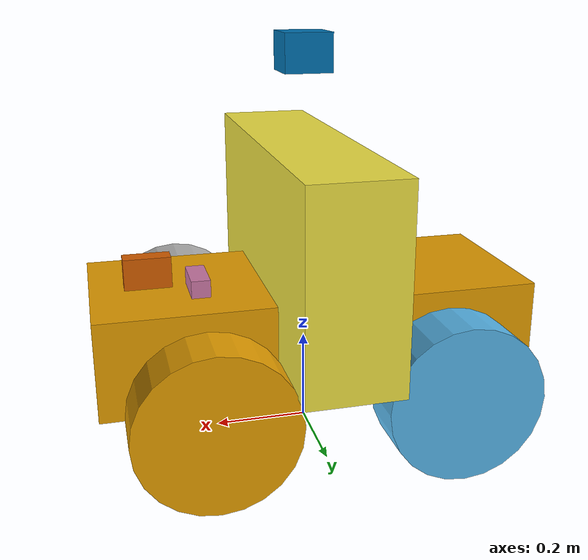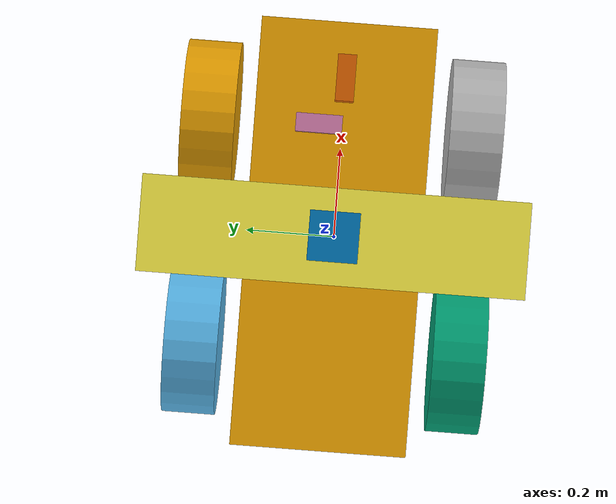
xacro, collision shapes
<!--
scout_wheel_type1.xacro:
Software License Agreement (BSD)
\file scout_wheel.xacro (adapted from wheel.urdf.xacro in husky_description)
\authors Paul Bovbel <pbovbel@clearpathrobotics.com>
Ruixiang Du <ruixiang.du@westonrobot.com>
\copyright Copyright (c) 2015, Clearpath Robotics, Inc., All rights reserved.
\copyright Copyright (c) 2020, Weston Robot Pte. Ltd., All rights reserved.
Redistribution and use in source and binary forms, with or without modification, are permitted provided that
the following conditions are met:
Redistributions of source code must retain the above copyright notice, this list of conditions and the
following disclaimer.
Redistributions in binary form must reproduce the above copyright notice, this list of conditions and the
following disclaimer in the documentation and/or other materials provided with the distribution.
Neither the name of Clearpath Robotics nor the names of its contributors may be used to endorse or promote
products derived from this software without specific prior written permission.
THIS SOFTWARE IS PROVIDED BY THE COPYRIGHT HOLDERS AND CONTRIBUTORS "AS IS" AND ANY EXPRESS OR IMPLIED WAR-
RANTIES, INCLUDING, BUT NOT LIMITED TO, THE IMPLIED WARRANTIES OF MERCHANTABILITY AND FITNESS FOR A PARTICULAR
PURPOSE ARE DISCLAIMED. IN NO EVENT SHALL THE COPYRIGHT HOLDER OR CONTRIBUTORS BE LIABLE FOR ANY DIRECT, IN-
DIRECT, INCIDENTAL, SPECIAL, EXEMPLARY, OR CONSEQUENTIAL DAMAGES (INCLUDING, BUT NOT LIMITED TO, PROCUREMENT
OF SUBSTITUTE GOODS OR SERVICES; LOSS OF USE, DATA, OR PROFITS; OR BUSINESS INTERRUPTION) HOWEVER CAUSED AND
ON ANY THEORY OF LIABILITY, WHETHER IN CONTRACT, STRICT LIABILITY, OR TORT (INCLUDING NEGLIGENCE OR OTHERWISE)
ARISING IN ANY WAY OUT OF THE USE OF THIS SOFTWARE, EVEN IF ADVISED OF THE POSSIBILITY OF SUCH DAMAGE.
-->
<?xml version="1.0"?>

<robot name="scout_v2"
    xmlns:xacro="http://ros.org/wiki/xacro">

    <xacro:arg name="robot_namespace" default="/" />

    <xacro:include filename="../urdf/scout_wheel_type1.xacro" />
    <xacro:include filename="../urdf/scout_wheel_type2.xacro" />

    <!-- Variables -->
    <xacro:property name="M_PI" value="3.14159"/>

    <!-- Vehicle Geometries -->
    <xacro:property name="base_x_size" value="0.9250000" />
    <xacro:property name="base_y_size" value="0.380000" />
    <xacro:property name="base_z_size" value="0.210000" />

    <xacro:property name="wheelbase" value="0.498" />
    <xacro:property name="track" value="0.58306" />
    <xacro:property name="wheel_vertical_offset" value="-0.0702" />

    <xacro:property name="wheel_length" value="1.1653e-01" />
    <xacro:property name="wheel_radius" value="1.6459e-01" />

    <xacro:property name="framework_z_size" value="0.42" />
    <xacro:property name="lidar_z_size" value="0.038" />
    <xacro:property name="camera_z_size" value="0.075" />
    <xacro:property name="imu_z_size" value="0.015" />

    <!-- Base link -->
    <link name="base_link">
        <visual>
            <origin xyz="0 0 0" rpy="0 0 0" />
            <geometry>
                <mesh filename="../meshes/base_link.dae" />
            </geometry>
        </visual>
        <collision>
            <origin xyz="0 0 0.008" rpy="0 0 0" />
            <geometry>
                <box size="${base_x_size} ${base_y_size} ${base_z_size}"/>
            </geometry>
        </collision>
        <collision>
            <origin xyz="0 0 ${base_z_size/6}" rpy="0 0 0" />
            <geometry>
                <box size="${base_x_size/6} ${base_y_size*1.65} ${base_z_size/3}"/>
            </geometry>
        </collision>
    </link>

    <link name="base_footprint">
        <visual>
            <origin xyz="0 0 0" rpy="0 0 0" />
            <geometry>
                <box size="0.001 0.001 0.001" />
            </geometry>
        </visual>
    </link>

    <joint name="base_footprint_joint" type="fixed">
        <origin xyz="0 0 ${wheel_radius - wheel_vertical_offset}" rpy="0 0 0" />
        <parent link="base_footprint" />
        <child link="base_link" />
    </joint>

    <link name="inertial_link">
        <inertial>
            <mass value="40" />
            <origin xyz="0.0 0.0 0.0" />
            <inertia ixx="2.288641" ixy="0" ixz="0" iyy="5.103976" iyz="0" izz="3.431465" />
        </inertial>
    </link>

    <joint name="inertial_joint" type="fixed">
        <origin xyz="0 0 0" rpy="0 0 0" />
        <parent link="base_link" />
        <child link="inertial_link" />
    </joint>

    <link name="framework">
        <visual>
            <geometry>
                <mesh filename="../meshes/framework.dae"/>
                <box size="0.2 0.8 0.42" />
            </geometry>
        </visual>
        <collision>
            <geometry>
                <box size="0.2 0.8 0.42" />
            </geometry>
        </collision>
        <inertial>
            <mass value="4"/>
            <origin xyz="0.0 0.0 0.0" rpy="0.0 0.0 0.0"/>
            <inertia ixx="0.0" ixy="0.0" ixz="0.0" iyy="0.0" iyz="0.0" izz="0.0"/>
        </inertial>
    </link>

    <joint name="base_link2framework" type="fixed">
        <parent link="base_link"/>
        <child link="framework"/>
        <origin xyz="0.0 0.0 ${base_z_size-0.01}" rpy="0.0 0.0 0.0"/>
    </joint>

    <link name="lidar">
        <visual>
            <geometry>
                <mesh filename="../meshes/rplidarA3.dae"/>
                <box size="0.1 0.1 0.08" />
            </geometry>
        </visual>
        <collision>
            <geometry>
                <box size="0.1 0.1 0.08" />
            </geometry>
        </collision>
        <inertial>
            <mass value="0.5"/>
            <origin xyz="0.0 0.0 0.0" rpy="0.0 0.0 0.0"/>
            <inertia ixx="0.0" ixy="0.0" ixz="0.0" iyy="0.0" iyz="0.0" izz="0.0"/>
        </inertial>
    </link>

    <joint name="framework2lidar" type="fixed">
        <parent link="framework"/>
        <child link="lidar"/>
        <origin xyz="0.0 0.0 ${framework_z_size - lidar_z_size/2 - 0.01}" rpy="0.0 0.0 3.14"/>
    </joint>

    <link name="camera">
        <visual>
            <geometry>
                <mesh filename="../meshes/astrapro.dae"/>
                <box size="0.1 0.04 0.075" />
            </geometry>
        </visual>
        <collision>
            <geometry>
                <box size="0.1 0.04 0.075" />
            </geometry>
        </collision>
        <inertial>
            <mass value="0.5"/>
            <origin xyz="0.0 0.0 0.0" rpy="0.0 0.0 0.0"/>
            <inertia ixx="0.0" ixy="0.0" ixz="0.0" iyy="0.0" iyz="0.0" izz="0.0"/>
        </inertial>
    </link>

    <joint name="base2camera" type="fixed">
        <parent link="base_link"/>
        <child link="camera"/>
        <origin xyz="0.34 0.0 ${base_z_size/2 + camera_z_size/2}" rpy="0.0 0.0 0.0"/>
    </joint>

    <link name="imu">
        <visual>
            <geometry>
                <mesh filename="../meshes/imu.dae"/>
                <box size="0.1 0.04 0.075" />
            </geometry>
        </visual>
        <collision>
            <geometry>
                <box size="0.1 0.04 0.075" />
            </geometry>
        </collision>
        <inertial>
            <mass value="0.5"/>
            <origin xyz="0.0 0.0 0.0" rpy="0.0 0.0 0.0"/>
            <inertia ixx="0.0" ixy="0.0" ixz="0.0" iyy="0.0" iyz="0.0" izz="0.0"/>
        </inertial>
    </link>

    <joint name="base2imu" type="fixed">
        <parent link="base_link"/>
        <child link="imu"/>
        <origin xyz="0.24 0.05 ${base_z_size/2 + imu_z_size/2}" rpy="0.0 0.0 1.57"/>
    </joint>

    <!-- Scout wheel macros -->
    <!-- wheel labeled from 0 to 3, conter-clockwise, starting from front right wheel -->
    <!-- motor 1 and 2 (left side) are mechanically installed in a reversed direction -->
    <xacro:scout_wheel_type1 wheel_prefix="front_right">
        <origin xyz="${wheelbase/2} ${-track/2} ${wheel_vertical_offset}" rpy="3.14 0 0" />
    </xacro:scout_wheel_type1>
    <xacro:scout_wheel_type2 wheel_prefix="front_left">
        <origin xyz="${wheelbase/2} ${track/2} ${wheel_vertical_offset}" rpy="0 0 0" />
    </xacro:scout_wheel_type2>
    <xacro:scout_wheel_type1 wheel_prefix="rear_left">
        <origin xyz="${-wheelbase/2} ${track/2} ${wheel_vertical_offset}" rpy="0 0 0" />
    </xacro:scout_wheel_type1>
    <xacro:scout_wheel_type2 wheel_prefix="rear_right">
        <origin xyz="${-wheelbase/2} ${-track/2} ${wheel_vertical_offset}" rpy="3.14 0 0" />
    </xacro:scout_wheel_type2>

</robot>

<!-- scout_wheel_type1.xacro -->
<robot xmlns:xacro="http://ros.org/wiki/xacro" name="scout_wheel">

    <xacro:macro name="scout_wheel_type1" params="wheel_prefix *joint_pose">
        <link name="${wheel_prefix}_wheel_link">
            <inertial>
                <mass value="3" />
                <origin xyz="0 0 0" />
                <inertia ixx="0.7171" ixy="0" ixz="0" iyy="0.1361" iyz="0" izz="0.7171" />
            </inertial>
            <visual>
                <origin xyz="0 0 0" rpy="0 0 0" />
                <geometry>
                    <mesh filename="../meshes/wheel_type1.dae" />
                </geometry>
            </visual>
            <collision>
                <origin xyz="0 0 0" rpy="${M_PI/2} 0 0" />
                <geometry>
                    <cylinder length="${wheel_length}" radius="${wheel_radius}" />
                </geometry>
            </collision>
        </link>

        <joint name="${wheel_prefix}_wheel" type="continuous">
            <parent link="base_link"/>
            <child link="${wheel_prefix}_wheel_link"/>
            <xacro:insert_block name="joint_pose"/>
            <axis xyz="0 -1 0" rpy="0 0 0" />
        </joint>
    </xacro:macro>

</robot>

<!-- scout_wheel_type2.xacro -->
<robot xmlns:xacro="http://ros.org/wiki/xacro" name="scout_wheel">

    <xacro:macro name="scout_wheel_type2" params="wheel_prefix *joint_pose">
        <link name="${wheel_prefix}_wheel_link">
            <inertial>
                <mass value="8" />
                <origin xyz="0 0 0" />
                <inertia ixx="0.1171" ixy="0" ixz="0" iyy="0.1361" iyz="0" izz="0.1171" />
            </inertial>
            <visual>
                <origin xyz="0 0 0" rpy="0 0 0" />
                <geometry>
                    <mesh filename="file://$(find scout_description)/meshes/wheel_type1.dae" />
                </geometry>
            </visual>
            <collision>
                <origin xyz="0 0 0" rpy="${M_PI/2} 0 0" />
                <geometry>
                    <cylinder length="${wheel_length}" radius="${wheel_radius}" />
                </geometry>
                    <contact>
                         <ode>
                        <min_depth>0.001</min_depth>
                         </ode>
                    </contact>
            </collision>
        </link>

        <joint name="${wheel_prefix}_wheel" type="continuous">
            <parent link="base_link"/>
            <child link="${wheel_prefix}_wheel_link"/>
            <xacro:insert_block name="joint_pose"/>
            <axis xyz="0 1 0" rpy="0 0 0" />
            <dynamics damping="0.0" friction="20"/>
        </joint>
    </xacro:macro>

</robot>
